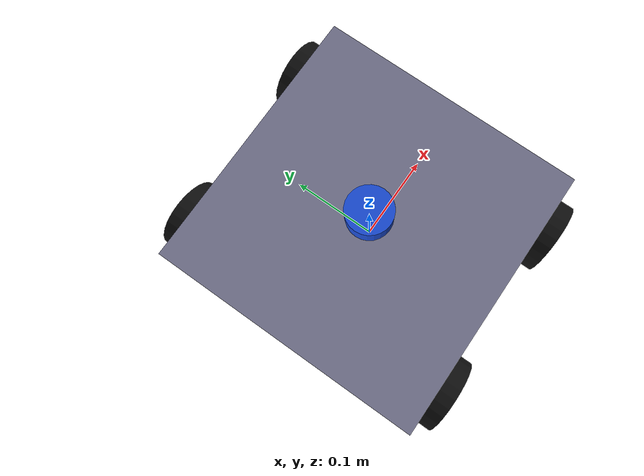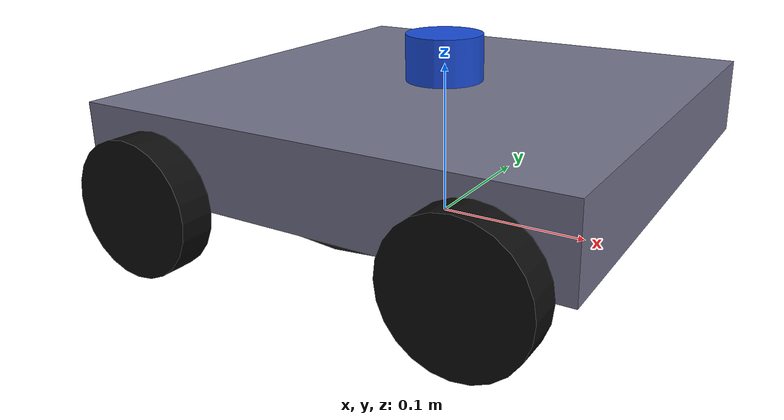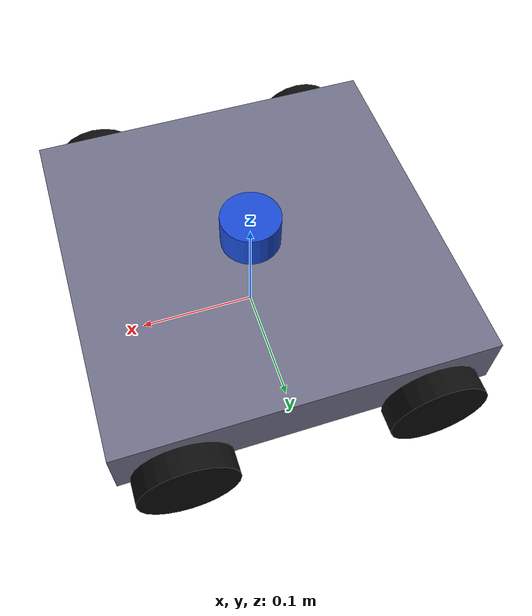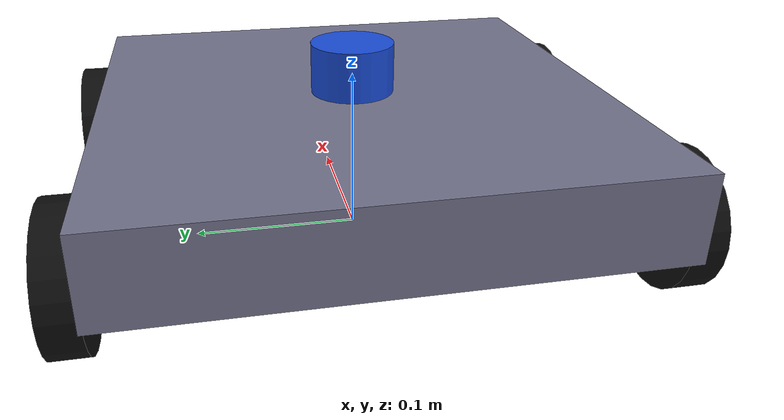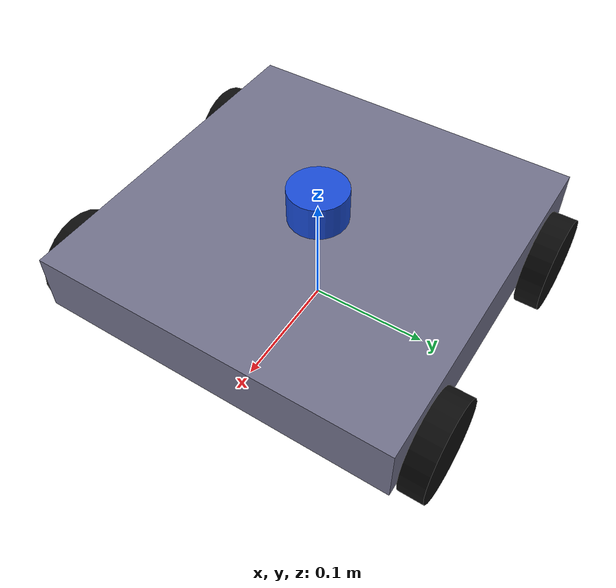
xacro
<?xml version="1.0"?>
<robot name="window_cleaner" xmlns:xacro="http://www.ros.org/wiki/xacro">

  <xacro:property name="base_length" value="0.30"/>
  <xacro:property name="base_width"  value="0.30"/>
  <xacro:property name="base_height" value="0.05"/>
  <xacro:property name="base_mass"   value="1.5"/>

  <xacro:property name="wheel_radius"    value="0.04"/>
  <xacro:property name="wheel_thickness" value="0.02"/>
  <xacro:property name="wheel_mass"      value="0.05"/>
  <xacro:property name="wheel_x_offset"  value="0.10"/>
  <xacro:property name="wheel_y_offset"  value="0.16"/>

  <xacro:property name="vacuum_radius" value="0.12"/>
  <xacro:property name="vacuum_height" value="0.02"/>
  <xacro:property name="vacuum_mass"   value="0.10"/>

  <xacro:property name="camera_size" value="0.04"/>
  <xacro:property name="camera_mass" value="0.05"/>

  <xacro:property name="lidar_radius" value="0.025"/>
  <xacro:property name="lidar_height" value="0.03"/>
  <xacro:property name="lidar_mass"   value="0.05"/>

  <xacro:macro name="box_inertia" params="m x y z">
    <inertial>
      <mass value="${m}"/>
      <origin xyz="0 0 0"/>
      <inertia ixx="${m*(y*y+z*z)/12.0}" ixy="0" ixz="0"
               iyy="${m*(x*x+z*z)/12.0}" iyz="0"
               izz="${m*(x*x+y*y)/12.0}"/>
    </inertial>
  </xacro:macro>

  <xacro:macro name="cylinder_inertia_y" params="m r h">
    <inertial>
      <mass value="${m}"/>
      <origin xyz="0 0 0"/>
      <inertia ixx="${m*(3.0*r*r+h*h)/12.0}" ixy="0" ixz="0"
               iyy="${m*r*r/2.0}" iyz="0"
               izz="${m*(3.0*r*r+h*h)/12.0}"/>
    </inertial>
  </xacro:macro>

  <xacro:macro name="cylinder_inertia_z" params="m r h">
    <inertial>
      <mass value="${m}"/>
      <origin xyz="0 0 0"/>
      <inertia ixx="${m*(3.0*r*r+h*h)/12.0}" ixy="0" ixz="0"
               iyy="${m*(3.0*r*r+h*h)/12.0}" iyz="0"
               izz="${m*r*r/2.0}"/>
    </inertial>
  </xacro:macro>

  <material name="chassis_grey"><color rgba="0.45 0.45 0.55 1.0"/></material>
  <material name="pad_black">   <color rgba="0.10 0.10 0.10 1.0"/></material>
  <material name="wheel_black"> <color rgba="0.05 0.05 0.05 1.0"/></material>
  <material name="camera_red">  <color rgba="0.85 0.10 0.10 1.0"/></material>
  <material name="lidar_blue">  <color rgba="0.10 0.30 0.85 1.0"/></material>

  <link name="base_footprint"/>

  <joint name="base_footprint_joint" type="fixed">
    <parent link="base_footprint"/>
    <child  link="base_link"/>
    <origin xyz="0 0 ${base_height/2 + wheel_radius}"/>
  </joint>

  <link name="base_link">
    <visual>
      <origin xyz="0 0 0"/>
      <geometry><box size="${base_length} ${base_width} ${base_height}"/></geometry>
      <material name="chassis_grey"/>
    </visual>
    <collision>
      <origin xyz="0 0 0"/>
      <geometry><box size="${base_length} ${base_width} ${base_height}"/></geometry>
    </collision>
    <xacro:box_inertia m="${base_mass}" x="${base_length}" y="${base_width}" z="${base_height}"/>
  </link>

  <link name="vacuum_pad_link">
    <visual>
      <origin xyz="0 0 0"/>
      <geometry><cylinder radius="${vacuum_radius}" length="${vacuum_height}"/></geometry>
      <material name="pad_black"/>
    </visual>
    <collision>
      <origin xyz="0 0 0"/>
      <geometry><cylinder radius="${vacuum_radius}" length="${vacuum_height}"/></geometry>
    </collision>
    <xacro:cylinder_inertia_z m="${vacuum_mass}" r="${vacuum_radius}" h="${vacuum_height}"/>
  </link>

  <joint name="vacuum_joint" type="fixed">
    <parent link="base_link"/>
    <child  link="vacuum_pad_link"/>
    <origin xyz="0 0 ${-base_height/2 - vacuum_height/2}"/>
  </joint>

  <xacro:macro name="wheel" params="prefix x_sign y_sign">
    <link name="${prefix}_wheel_link">
      <visual>
        <origin xyz="0 0 0" rpy="${pi/2} 0 0"/>
        <geometry><cylinder radius="${wheel_radius}" length="${wheel_thickness}"/></geometry>
        <material name="wheel_black"/>
      </visual>
      <collision>
        <origin xyz="0 0 0" rpy="${pi/2} 0 0"/>
        <geometry><cylinder radius="${wheel_radius}" length="${wheel_thickness}"/></geometry>
      </collision>
      <xacro:cylinder_inertia_y m="${wheel_mass}" r="${wheel_radius}" h="${wheel_thickness}"/>
    </link>
    <joint name="${prefix}_wheel_joint" type="continuous">
      <parent link="base_link"/>
      <child  link="${prefix}_wheel_link"/>
      <origin xyz="${x_sign*wheel_x_offset} ${y_sign*wheel_y_offset} ${-base_height/2}"/>
      <axis xyz="0 1 0"/>
      <limit effort="10.0" velocity="10.0"/>
      <dynamics damping="0.05" friction="0.10"/>
    </joint>
  </xacro:macro>

  <xacro:wheel prefix="front_left"  x_sign="1"  y_sign="1"/>
  <xacro:wheel prefix="front_right" x_sign="1"  y_sign="-1"/>
  <xacro:wheel prefix="rear_left"   x_sign="-1" y_sign="1"/>
  <xacro:wheel prefix="rear_right"  x_sign="-1" y_sign="-1"/>

  <link name="camera_link">
    <xacro:box_inertia m="${camera_mass}" x="${camera_size}" y="${camera_size}" z="${camera_size}"/>
  </link>

  <joint name="camera_joint" type="fixed">
    <parent link="base_link"/>
    <child  link="camera_link"/>
    <origin xyz="${base_length/2 - camera_size/2} 0 ${base_height/2 + camera_size/2}"/>
  </joint>

  <link name="camera_optical"/>
  <joint name="camera_optical_joint" type="fixed">
    <parent link="camera_link"/>
    <child  link="camera_optical"/>
    <origin xyz="0 0 0" rpy="${-pi/2} 0 ${-pi/2}"/>
  </joint>

  <link name="lidar_link">
    <visual>
      <origin xyz="0 0 0"/>
      <geometry><cylinder radius="${lidar_radius}" length="${lidar_height}"/></geometry>
      <material name="lidar_blue"/>
    </visual>
    <collision>
      <origin xyz="0 0 0"/>
      <geometry><cylinder radius="${lidar_radius}" length="${lidar_height}"/></geometry>
    </collision>
    <xacro:cylinder_inertia_z m="${lidar_mass}" r="${lidar_radius}" h="${lidar_height}"/>
  </link>

  <joint name="lidar_joint" type="fixed">
    <parent link="base_link"/>
    <child  link="lidar_link"/>
    <origin xyz="0 0 ${base_height/2 + lidar_height/2}"/>
  </joint>

  <xacro:include filename="$(find window_cleaner_description)/urdf/sensors.xacro"/>

</robot>
